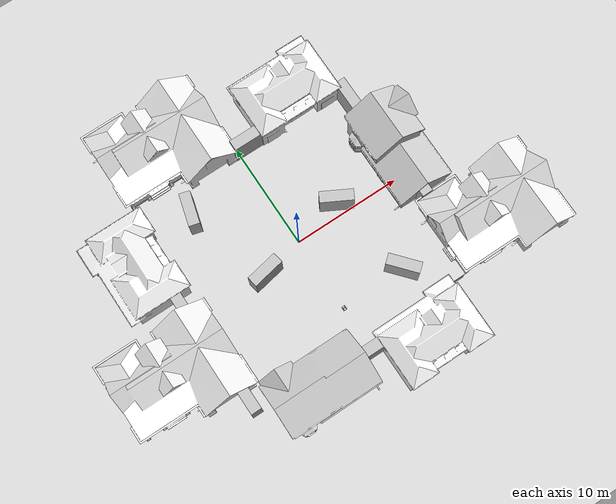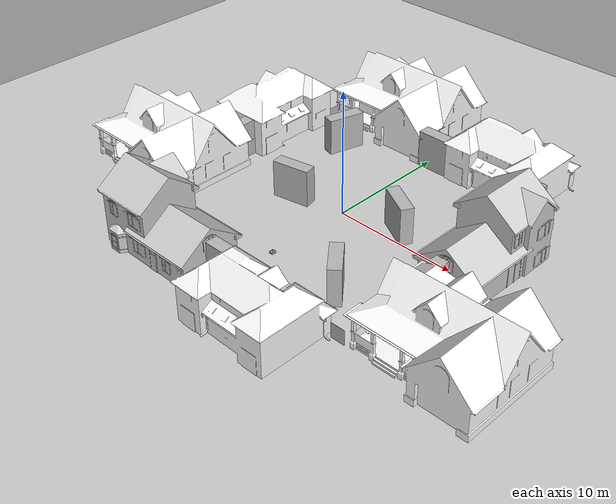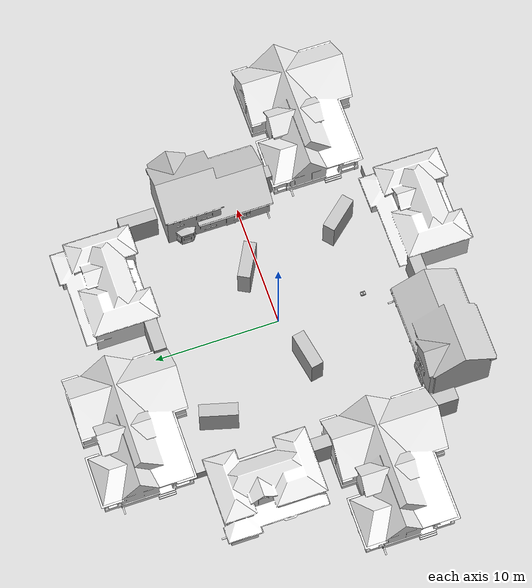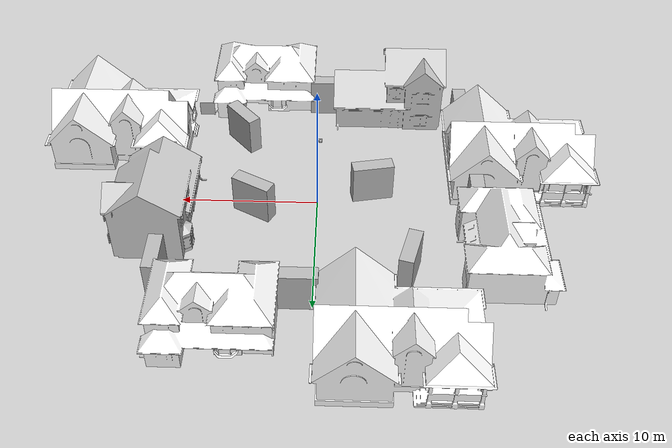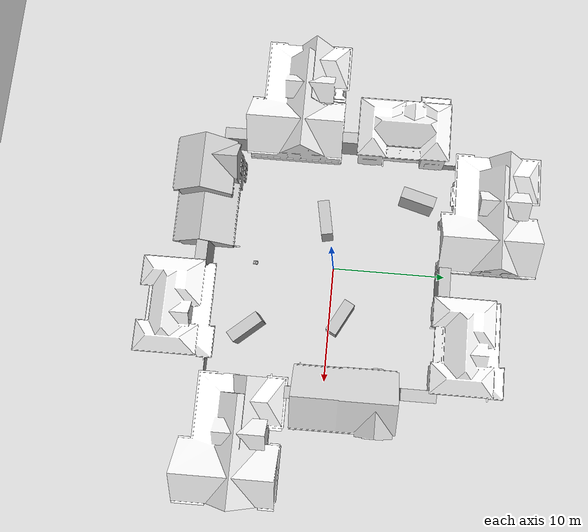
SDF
<sdf version="1.5">
 <world name="default">
  <light name="sun" type="directional">
   <pose>0 0 10 0 -0 0</pose>
   <diffuse>0.8 0.8 0.8 1</diffuse>
   <specular>0.2 0.2 0.2 1</specular>
   <attenuation>
    <range>1000</range>
    <constant>0.9</constant>
    <linear>0.01</linear>
    <quadratic>0.001</quadratic>
   </attenuation>
   <direction>-0.5 0.1 -0.9</direction>
  </light>
  <model name="ground_plane">
   <static>1</static>
   <link name="link">
    <collision name="collision">
     <geometry><plane><normal>0 0 1</normal><size>100 100</size></plane></geometry>
     <surface><friction><ode><mu>100</mu><mu2>50</mu2></ode></friction></surface>
    </collision>
    <visual name="visual">
     <cast_shadows>0</cast_shadows>
     <geometry><plane><normal>0 0 1</normal><size>100 100</size></plane></geometry>
     <material>
      <script><uri>file://media/materials/scripts/gazebo.material</uri><name>Gazebo/Grey</name></script>
     </material>
    </visual>
   </link>
  </model>
  <physics type="ode">
   <max_step_size>0.001</max_step_size>
   <real_time_factor>1</real_time_factor>
   <real_time_update_rate>1000</real_time_update_rate>
   <gravity>0 0 -9.8</gravity>
   <magnetic_field>5.5645e-06 2.28758e-05 -4.23884e-05</magnetic_field>
  </physics>
  <scene><ambient>0.4 0.4 0.4 1</ambient><background>0.7 0.7 0.7 1</background><shadows>1</shadows></scene>
  <spherical_coordinates>
   <surface_model>EARTH_WGS84</surface_model>
   <latitude_deg>0</latitude_deg>
   <longitude_deg>0</longitude_deg>
   <elevation>0</elevation>
   <heading_deg>0</heading_deg>
  </spherical_coordinates>
  <model name="House 1">
   <static>1</static>
   <link name="link">
    <collision name="collision">
     <geometry><mesh><uri>model://house_1/meshes/house_1.dae</uri></mesh></geometry>
    </collision>
    <visual name="visual">
     <geometry><mesh><uri>model://house_1/meshes/house_1.dae</uri></mesh></geometry>
     <material>
      <script>
       <uri>model://house_1/materials/scripts</uri>
       <uri>model://house_1/materials/textures</uri>
       <name>House_1/Diffuse</name>
      </script>
      <shader type="normal_map_object_space"><normal_map>House_1_Normal.png</normal_map></shader>
     </material>
    </visual>
   </link>
   <pose>-5.33169 13.6297 0 0 -0 0</pose>
  </model>
  <model name="House 2">
   <static>1</static>
   <link name="link">
    <collision name="collision">
     <geometry><mesh><uri>model://house_2/meshes/house_2.dae</uri></mesh></geometry>
    </collision>
    <visual name="visual">
     <geometry><mesh><uri>model://house_2/meshes/house_2.dae</uri></mesh></geometry>
     <material>
      <script>
       <uri>model://house_2/materials/scripts</uri>
       <uri>model://house_2/materials/textures</uri>
       <uri>model://house_1/materials/textures</uri>
       <name>House_2/Diffuse</name>
      </script>
      <shader type="normal_map_object_space">
       <normal_map>model://house_1/materials/textures/House_1_Normal.png</normal_map>
      </shader>
     </material>
    </visual>
   </link>
   <pose>5.55864 11.542 0 0 -0 0</pose>
  </model>
  <model name="House 3_0">
   <static>1</static>
   <link name="link">
    <collision name="collision">
     <geometry><mesh><uri>model://house_3/meshes/house_3.dae</uri></mesh></geometry>
    </collision>
    <visual name="visual">
     <geometry><mesh><uri>model://house_3/meshes/house_3.dae</uri></mesh></geometry>
     <material>
      <script>
       <uri>model://house_3/materials/scripts</uri>
       <uri>model://house_3/materials/textures</uri>
       <uri>model://house_1/materials/textures</uri>
       <name>House_3/Diffuse</name>
      </script>
      <shader type="normal_map_object_space">
       <normal_map>model://house_1/materials/textures/House_1_Normal.png</normal_map>
      </shader>
     </material>
    </visual>
   </link>
   <pose>11.4269 1.46698 0 0 0 -1.5708</pose>
  </model>
  <model name="House 1_0">
   <static>1</static>
   <link name="link">
    <collision name="collision">
     <geometry><mesh><uri>model://house_1/meshes/house_1.dae</uri></mesh></geometry>
    </collision>
    <visual name="visual">
     <geometry><mesh><uri>model://house_1/meshes/house_1.dae</uri></mesh></geometry>
     <material>
      <script>
       <uri>model://house_1/materials/scripts</uri>
       <uri>model://house_1/materials/textures</uri>
       <name>House_1/Diffuse</name>
      </script>
      <shader type="normal_map_object_space"><normal_map>House_1_Normal.png</normal_map></shader>
     </material>
    </visual>
   </link>
   <pose>15.4671 -7 0 0 -0 0</pose>
  </model>
  <model name="House 2_0">
   <static>1</static>
   <link name="link">
    <collision name="collision">
     <geometry><mesh><uri>model://house_2/meshes/house_2.dae</uri></mesh></geometry>
    </collision>
    <visual name="visual">
     <geometry><mesh><uri>model://house_2/meshes/house_2.dae</uri></mesh></geometry>
     <material>
      <script>
       <uri>model://house_2/materials/scripts</uri>
       <uri>model://house_2/materials/textures</uri>
       <uri>model://house_1/materials/textures</uri>
       <name>House_2/Diffuse</name>
      </script>
      <shader type="normal_map_object_space">
       <normal_map>model://house_1/materials/textures/House_1_Normal.png</normal_map>
      </shader>
     </material>
    </visual>
   </link>
   <pose>4 -13.4593 0 0 -0 0</pose>
  </model>
  <model name="House 3_1">
   <static>1</static>
   <link name="link">
    <collision name="collision">
     <geometry><mesh><uri>model://house_3/meshes/house_3.dae</uri></mesh></geometry>
    </collision>
    <visual name="visual">
     <geometry><mesh><uri>model://house_3/meshes/house_3.dae</uri></mesh></geometry>
     <material>
      <script>
       <uri>model://house_3/materials/scripts</uri>
       <uri>model://house_3/materials/textures</uri>
       <uri>model://house_1/materials/textures</uri>
       <name>House_3/Diffuse</name>
      </script>
      <shader type="normal_map_object_space">
       <normal_map>model://house_1/materials/textures/House_1_Normal.png</normal_map>
      </shader>
     </material>
    </visual>
   </link>
   <pose>-5.07585 -11.4835 0 0 -0 0</pose>
  </model>
  <model name="House 1_1">
   <static>1</static>
   <link name="link">
    <collision name="collision">
     <geometry><mesh><uri>model://house_1/meshes/house_1.dae</uri></mesh></geometry>
    </collision>
    <visual name="visual">
     <geometry><mesh><uri>model://house_1/meshes/house_1.dae</uri></mesh></geometry>
     <material>
      <script>
       <uri>model://house_1/materials/scripts</uri>
       <uri>model://house_1/materials/textures</uri>
       <name>House_1/Diffuse</name>
      </script>
      <shader type="normal_map_object_space"><normal_map>House_1_Normal.png</normal_map></shader>
     </material>
    </visual>
   </link>
   <pose>-14.723 -3.93635 0 0 -0 0</pose>
  </model>
  <model name="House 2_1">
   <static>1</static>
   <link name="link">
    <collision name="collision">
     <geometry><mesh><uri>model://house_2/meshes/house_2.dae</uri></mesh></geometry>
    </collision>
    <visual name="visual">
     <geometry><mesh><uri>model://house_2/meshes/house_2.dae</uri></mesh></geometry>
     <material>
      <script>
       <uri>model://house_2/materials/scripts</uri>
       <uri>model://house_2/materials/textures</uri>
       <uri>model://house_1/materials/textures</uri>
       <name>House_2/Diffuse</name>
      </script>
      <shader type="normal_map_object_space">
       <normal_map>model://house_1/materials/textures/House_1_Normal.png</normal_map>
      </shader>
     </material>
    </visual>
   </link>
   <pose>-12.5857 4.70646 0 0 -0 1.5708</pose>
  </model>
  <model name="brick_box_3x1x3">
   <static>1</static>
   <link name="chassis">
    <pose>0 0 1.5 0 -0 0</pose>
    <collision name="collision"><geometry><box><size>3 1 3</size></box></geometry></collision>
    <visual name="visual">
     <geometry><mesh><uri>model://brick_box_3x1x3/meshes/simple_box.dae</uri><scale>3 1 3</scale></mesh></geometry>
     <material>
      <script>
       <uri>model://brick_box_3x1x3/materials/scripts</uri>
       <uri>model://brick_box_3x1x3/materials/textures</uri>
       <name>BrickBox/Diffuse</name>
      </script>
     </material>
    </visual>
   </link>
   <pose>1.10479 9.63979 0 0 -0 0</pose>
  </model>
  <model name="brick_box_3x1x3_clone">
   <static>1</static>
   <link name="chassis">
    <pose>0 0 1.5 0 -0 0</pose>
    <collision name="collision"><geometry><box><size>3 1 3</size></box></geometry></collision>
    <visual name="visual">
     <geometry><mesh><uri>model://brick_box_3x1x3/meshes/simple_box.dae</uri><scale>3 1 3</scale></mesh></geometry>
     <material>
      <script>
       <uri>model://brick_box_3x1x3/materials/scripts</uri>
       <uri>model://brick_box_3x1x3/materials/textures</uri>
       <name>BrickBox/Diffuse</name>
      </script>
     </material>
    </visual>
   </link>
   <pose>-0.620321 -11.3778 0 0 -0 0</pose>
  </model>
  <model name="nist_maze_wall_120">
   <static>1</static>
   <link name="nist_maze_wall_120_link">
    <collision name="collision">
     <geometry>
      <mesh><uri>model://nist_maze_wall_120/meshes/nist_maze_wall_120.dae</uri><scale>1 1 1</scale></mesh>
     </geometry>
    </collision>
    <visual name="visual">
     <geometry>
      <mesh><uri>model://nist_maze_wall_120/meshes/nist_maze_wall_120.dae</uri><scale>1 1 1</scale></mesh>
     </geometry>
    </visual>
   </link>
   <pose>9.42476 -11 0 0 -0 0</pose>
  </model>
  <model name="brick_box_3x1x3_clone_clone_0">
   <static>1</static>
   <link name="chassis">
    <pose>0 0 1.5 0 -0 0</pose>
    <collision name="collision"><geometry><box><size>3 1 3</size></box></geometry></collision>
    <visual name="visual">
     <geometry><mesh><uri>model://brick_box_3x1x3/meshes/simple_box.dae</uri><scale>3 1 3</scale></mesh></geometry>
     <material>
      <script>
       <uri>model://brick_box_3x1x3/materials/scripts</uri>
       <uri>model://brick_box_3x1x3/materials/textures</uri>
       <name>BrickBox/Diffuse</name>
      </script>
     </material>
    </visual>
   </link>
   <pose>11.1254 -1.63011 0 0 -0 1.5708</pose>
  </model>
  <model name="brick_box_3x1x3_clone_clone_0_clone">
   <static>1</static>
   <link name="chassis">
    <pose>0 0 1.5 0 -0 0</pose>
    <collision name="collision"><geometry><box><size>3 1 3</size></box></geometry></collision>
    <visual name="visual">
     <geometry><mesh><uri>model://brick_box_3x1x3/meshes/simple_box.dae</uri><scale>3 1 3</scale></mesh></geometry>
     <material>
      <script>
       <uri>model://brick_box_3x1x3/materials/scripts</uri>
       <uri>model://brick_box_3x1x3/materials/textures</uri>
       <name>BrickBox/Diffuse</name>
      </script>
     </material>
    </visual>
   </link>
   <pose>10.5564 8 0 0 -0 1.5708</pose>
  </model>
  <model name="brick_box_3x1x3_clone_clone_0_clone_0">
   <static>1</static>
   <link name="chassis">
    <pose>0 0 1.5 0 -0 0</pose>
    <collision name="collision"><geometry><box><size>3 1 3</size></box></geometry></collision>
    <visual name="visual">
     <geometry><mesh><uri>model://brick_box_3x1x3/meshes/simple_box.dae</uri><scale>3 1 3</scale></mesh></geometry>
     <material>
      <script>
       <uri>model://brick_box_3x1x3/materials/scripts</uri>
       <uri>model://brick_box_3x1x3/materials/textures</uri>
       <name>BrickBox/Diffuse</name>
      </script>
     </material>
    </visual>
   </link>
   <pose>-11.4114 1 0 0 -0 1.5708</pose>
  </model>
  <model name="brick_box_3x1x3_clone_clone_0_clone_1">
   <static>1</static>
   <link name="chassis">
    <pose>0 0 1.5 0 -0 0</pose>
    <collision name="collision"><geometry><box><size>3 1 3</size></box></geometry></collision>
    <visual name="visual">
     <geometry><mesh><uri>model://brick_box_3x1x3/meshes/simple_box.dae</uri><scale>3 1 3</scale></mesh></geometry>
     <material>
      <script>
       <uri>model://brick_box_3x1x3/materials/scripts</uri>
       <uri>model://brick_box_3x1x3/materials/textures</uri>
       <name>BrickBox/Diffuse</name>
      </script>
     </material>
    </visual>
   </link>
   <pose>-11 -9 0 0 -0 1.5708</pose>
  </model>
  <model name="nist_maze_wall_120_0">
   <static>1</static>
   <link name="nist_maze_wall_120_link">
    <collision name="collision">
     <geometry>
      <mesh><uri>model://nist_maze_wall_120/meshes/nist_maze_wall_120.dae</uri><scale>1 1 1</scale></mesh>
     </geometry>
    </collision>
    <visual name="visual">
     <geometry>
      <mesh><uri>model://nist_maze_wall_120/meshes/nist_maze_wall_120.dae</uri><scale>1 1 1</scale></mesh>
     </geometry>
    </visual>
   </link>
   <pose>-10.7548 9.67861 0 0 0 -1.5708</pose>
  </model>
  <model name="brick_box_3x1x3_0">
   <static>1</static>
   <link name="chassis">
    <pose>0 0 1.5 0 -0 0</pose>
    <collision name="collision"><geometry><box><size>3 1 3</size></box></geometry></collision>
    <visual name="visual">
     <geometry><mesh><uri>model://brick_box_3x1x3/meshes/simple_box.dae</uri><scale>3 1 3</scale></mesh></geometry>
     <material>
      <script>
       <uri>model://brick_box_3x1x3/materials/scripts</uri>
       <uri>model://brick_box_3x1x3/materials/textures</uri>
       <name>BrickBox/Diffuse</name>
      </script>
     </material>
    </visual>
   </link>
   <pose>4.55702 1 -0 0 0 -0.49593</pose>
  </model>
  <model name="brick_box_3x1x3_0_clone">
   <static>1</static>
   <link name="chassis">
    <pose>0 0 1.5 0 -0 0</pose>
    <collision name="collision"><geometry><box><size>3 1 3</size></box></geometry></collision>
    <visual name="visual">
     <geometry><mesh><uri>model://brick_box_3x1x3/meshes/simple_box.dae</uri><scale>3 1 3</scale></mesh></geometry>
     <material>
      <script>
       <uri>model://brick_box_3x1x3/materials/scripts</uri>
       <uri>model://brick_box_3x1x3/materials/textures</uri>
       <name>BrickBox/Diffuse</name>
      </script>
     </material>
    </visual>
   </link>
   <pose>-4 -1 0 0 -0 0.189421</pose>
  </model>
  <model name="brick_box_3x1x3_0_clone_0">
   <static>1</static>
   <link name="chassis">
    <pose>0 0 1.5 0 -0 0</pose>
    <collision name="collision"><geometry><box><size>3 1 3</size></box></geometry></collision>
    <visual name="visual">
     <geometry><mesh><uri>model://brick_box_3x1x3/meshes/simple_box.dae</uri><scale>3 1 3</scale></mesh></geometry>
     <material>
      <script>
       <uri>model://brick_box_3x1x3/materials/scripts</uri>
       <uri>model://brick_box_3x1x3/materials/textures</uri>
       <name>BrickBox/Diffuse</name>
      </script>
     </material>
    </visual>
   </link>
   <pose>-6.44169 7 0 0 -0 1.30057</pose>
  </model>
  <model name="brick_box_3x1x3_0_clone_1">
   <static>1</static>
   <link name="chassis">
    <pose>0 0 1.5 0 -0 0</pose>
    <collision name="collision"><geometry><box><size>3 1 3</size></box></geometry></collision>
    <visual name="visual">
     <geometry><mesh><uri>model://brick_box_3x1x3/meshes/simple_box.dae</uri><scale>3 1 3</scale></mesh></geometry>
     <material>
      <script>
       <uri>model://brick_box_3x1x3/materials/scripts</uri>
       <uri>model://brick_box_3x1x3/materials/textures</uri>
       <name>BrickBox/Diffuse</name>
      </script>
     </material>
    </visual>
   </link>
   <pose>6 -7 0 0 0 -0.861831</pose>
  </model>
  <model name="jubot">
   <pose>0 -7 0.1 0 -0 1.57079</pose>
   <static>False</static>
   <link name="chassis">
    <pose>0 0 .1 0 0 0</pose>
    <collision name="collision"><geometry><box><size>.4 .2 .1</size></box></geometry></collision>
    <visual name="visual"><geometry><box><size>.4 .2 .1</size></box></geometry></visual>
   </link>
   <link name="left_front_wheel">
    <pose>0.1 0.13 0.1 0 1.5707 1.5707</pose>
    <collision name="collision">
     <geometry><cylinder><radius>.1</radius><length>.05</length></cylinder></geometry>
    </collision>
    <visual name="visual">
     <geometry><cylinder><radius>.1</radius><length>.05</length></cylinder></geometry>
    </visual>
   </link>
   <link name="right_front_wheel">
    <pose>0.1 -0.13 0.1 0 1.5707 1.5707</pose>
    <collision name="collision">
     <geometry><cylinder><radius>.1</radius><length>.05</length></cylinder></geometry>
    </collision>
    <visual name="visual">
     <geometry><cylinder><radius>.1</radius><length>.05</length></cylinder></geometry>
    </visual>
   </link>
   <link name="left_rear_wheel">
    <pose>-0.1 0.13 0.1 0 1.5707 1.5707</pose>
    <collision name="collision">
     <geometry><cylinder><radius>.1</radius><length>.05</length></cylinder></geometry>
    </collision>
    <visual name="visual">
     <geometry><cylinder><radius>.1</radius><length>.05</length></cylinder></geometry>
    </visual>
   </link>
   <link name="right_rear_wheel">
    <pose>-0.1 -0.13 0.1 0 1.5707 1.5707</pose>
    <collision name="collision">
     <geometry><cylinder><radius>.1</radius><length>.05</length></cylinder></geometry>
    </collision>
    <visual name="visual">
     <geometry><cylinder><radius>.1</radius><length>.05</length></cylinder></geometry>
    </visual>
   </link>
   <joint type="revolute" name="left_front">
    <pose>0 0 -0.03 0 0 0</pose>
    <child>left_front_wheel</child>
    <parent>chassis</parent>
    <axis><xyz>0 0 1</xyz></axis>
   </joint>
   <joint type="revolute" name="right_front">
    <pose>0 0 0.03 0 0 0</pose>
    <child>right_front_wheel</child>
    <parent>chassis</parent>
    <axis><xyz>0 0 1</xyz></axis>
   </joint>
   <joint type="revolute" name="left_rear">
    <pose>0 0 -0.03 0 0 0</pose>
    <child>left_rear_wheel</child>
    <parent>chassis</parent>
    <axis><xyz>0 0 1</xyz></axis>
   </joint>
   <joint type="revolute" name="right_rear">
    <pose>0 0 0.03 0 0 0</pose>
    <child>right_rear_wheel</child>
    <parent>chassis</parent>
    <axis><xyz>0 0 1</xyz></axis>
   </joint>
   <link name="hokuyo_link">
    <pose>0 0 0.2 0 0 0</pose>
    <inertial><mass>0.1</mass></inertial>
    <visual name="visual"><geometry><mesh><uri>model://hokuyo/meshes/hokuyo.dae</uri></mesh></geometry></visual>
    <collision name="collision-base">
     <pose>0 0 -0.0145 0 0 0</pose>
     <geometry><box><size>0.05 0.05 0.041</size></box></geometry>
    </collision>
    <collision name="collision-top">
     <pose>0 0 0.0205 0 0 0</pose>
     <geometry><cylinder><radius>0.021</radius><length>0.029</length></cylinder></geometry>
    </collision>
    <sensor name="laser" type="ray">
     <pose>0.01 0 0.0175 0 -0 0</pose>
     <ray>
      <scan>
       <horizontal>
        <samples>640</samples>
        <resolution>1</resolution>
        <min_angle>-2.26889</min_angle>
        <max_angle>2.268899</max_angle>
       </horizontal>
      </scan>
      <range><min>0.08</min><max>10</max><resolution>0.01</resolution></range>
     </ray>
     <plugin name="laser" filename="libRayPlugin.so"/>
     <always_on>1</always_on>
     <update_rate>30</update_rate>
     <visualize>true</visualize>
    </sensor>
   </link>
   <joint name="hokuyo_joint" type="revolute">
    <child>hokuyo_link</child>
    <parent>chassis</parent>
    <axis><xyz>0 0 1</xyz><limit><upper>0</upper><lower>0</lower></limit></axis>
   </joint>
   <plugin name="SkidSteerDrivePlugin" filename="libSkidSteerDrivePlugin.so"/>
  </model>
 </world>
</sdf>
